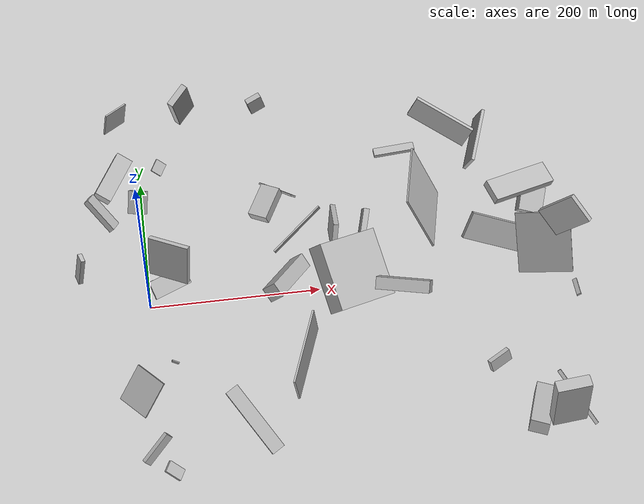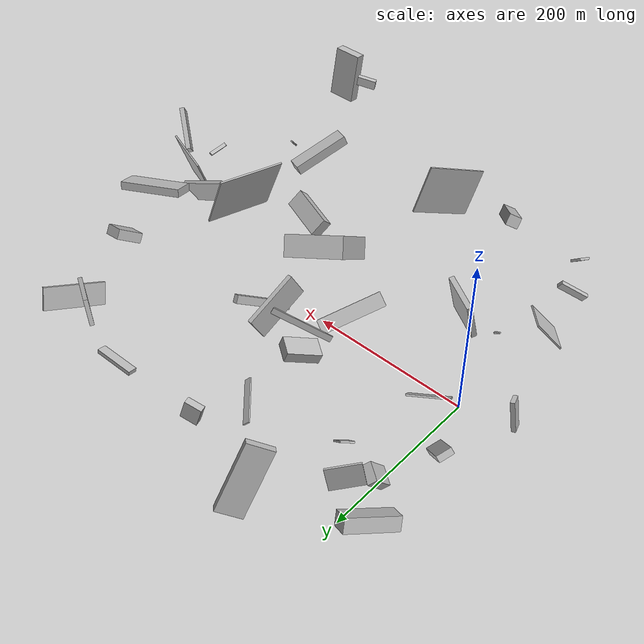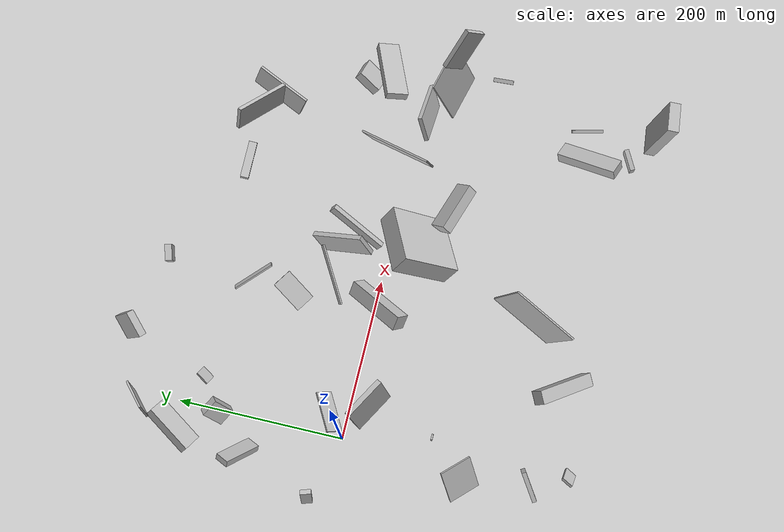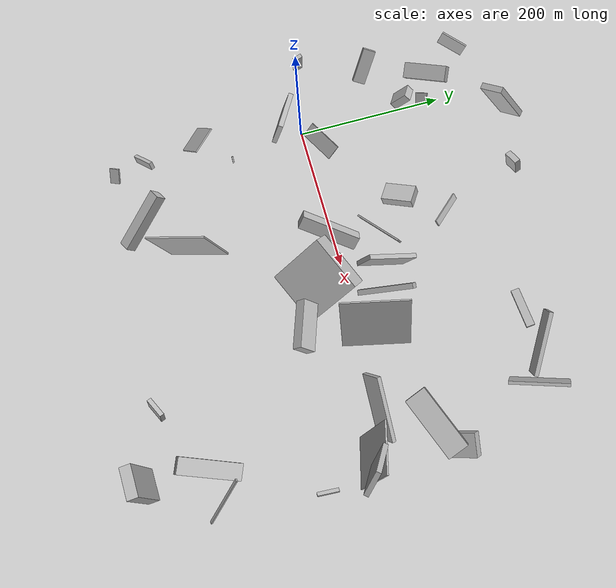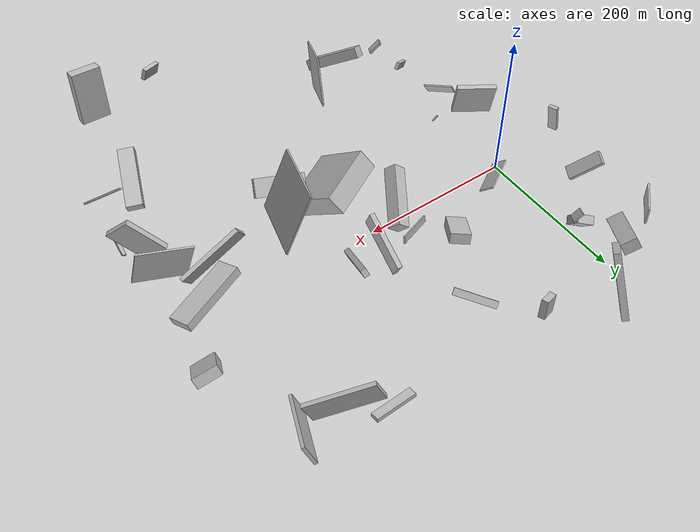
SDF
<sdf version="1.6">
 <world name="default">
  <scene>
   <sky><clouds><speed>12</speed></clouds></sky>
   <ambient>0.4 0.4 0.4 1</ambient>
   <background>0.7 0.7 0.7 1</background>
   <shadows>1</shadows>
  </scene>
  <gravity>0 0 -9.8066</gravity>
  <magnetic_field>6e-06 2.3e-05 -4.2e-05</magnetic_field>
  <physics default="0" name="default_physics" type="ode">
   <ode>
    <solver>
     <type>quick</type>
     <iters>10</iters>
     <sor>1.0</sor>
     <use_dynamic_moi_rescaling>0</use_dynamic_moi_rescaling>
    </solver>
    <constraints>
     <cfm>0</cfm>
     <erp>0.2</erp>
     <contact_max_correcting_vel>100</contact_max_correcting_vel>
     <contact_surface_layer>0.001</contact_surface_layer>
    </constraints>
   </ode>
   <max_step_size>0.004</max_step_size>
   <real_time_factor>1</real_time_factor>
   <real_time_update_rate>250</real_time_update_rate>
  </physics>
  <light name="sun" type="directional">
   <pose>0 0 10 0 0 0</pose>
   <diffuse>0.8 0.8 0.8 1</diffuse>
   <specular>0.2 0.2 0.2 1</specular>
   <attenuation>
    <range>1000</range>
    <constant>0.9</constant>
    <linear>0.01</linear>
    <quadratic>0.001</quadratic>
   </attenuation>
   <direction>-0.5 0.1 -0.9</direction>
  </light>
  <model name="building_1">
   <static>0</static>
   <pose>120.69952618193095 -259.11336223188584 58.884110034093844 1.0397348485780282 0.30126817021788665 -2.6742877106502343</pose>
   <link name="link">
    <gravity>0</gravity>
    <pose>0 0 40.0 0 0 0</pose>
    <collision name="collision"><geometry><box><size>15 14 80</size></box></geometry></collision>
    <visual name="visual">
     <cast_shadows>0</cast_shadows>
     <geometry><box><size>15 14 80</size></box></geometry>
     <material>
      <script>
       <uri>model://HANNAS_wall/materials/scripts</uri>
       <uri>model://HANNAS_wall/materials/textures</uri>
       <name>vrc/HANNAS_wall</name>
      </script>
     </material>
    </visual>
   </link>
  </model>
  <model name="building_2">
   <static>0</static>
   <pose>181.50811362495278 58.371357169876724 43.96327501220716 0.27452021353816236 -0.4481573492108263 0.5406475617595026</pose>
   <link name="link">
    <gravity>0</gravity>
    <pose>0 0 4.0 0 0 0</pose>
    <collision name="collision"><geometry><box><size>75 2 8</size></box></geometry></collision>
    <visual name="visual">
     <cast_shadows>0</cast_shadows>
     <geometry><box><size>75 2 8</size></box></geometry>
     <material>
      <script>
       <uri>model://HANNAS_wall/materials/scripts</uri>
       <uri>model://HANNAS_wall/materials/textures</uri>
       <name>vrc/HANNAS_wall</name>
      </script>
     </material>
    </visual>
   </link>
  </model>
  <model name="building_3">
   <static>0</static>
   <pose>256.7662573425646 41.91435346656143 30.976876899927195 -2.760050743788633 -0.5536722586722133 1.2575591969981854</pose>
   <link name="link">
    <gravity>0</gravity>
    <pose>0 0 5.0 0 0 0</pose>
    <collision name="collision"><geometry><box><size>80 7 10</size></box></geometry></collision>
    <visual name="visual">
     <cast_shadows>0</cast_shadows>
     <geometry><box><size>80 7 10</size></box></geometry>
     <material>
      <script>
       <uri>model://HANNAS_wall/materials/scripts</uri>
       <uri>model://HANNAS_wall/materials/textures</uri>
       <name>vrc/HANNAS_wall</name>
      </script>
     </material>
    </visual>
   </link>
  </model>
  <model name="building_4">
   <static>0</static>
   <pose>456.20914614981785 -217.9416135344359 33.34411260009686 -2.2790426128209154 -0.6465439906257192 2.2514999040885435</pose>
   <link name="link">
    <gravity>0</gravity>
    <pose>0 0 2.0 0 0 0</pose>
    <collision name="collision"><geometry><box><size>73 2 4</size></box></geometry></collision>
    <visual name="visual">
     <cast_shadows>0</cast_shadows>
     <geometry><box><size>73 2 4</size></box></geometry>
     <material>
      <script>
       <uri>model://HANNAS_wall/materials/scripts</uri>
       <uri>model://HANNAS_wall/materials/textures</uri>
       <name>vrc/HANNAS_wall</name>
      </script>
     </material>
    </visual>
   </link>
  </model>
  <model name="building_5">
   <static>0</static>
   <pose>22.758688437050413 -100.9555804152837 23.829792965315036 -1.4291897949516983 -0.5974958535114864 3.0999967223619564</pose>
   <link name="link">
    <gravity>0</gravity>
    <pose>0 0 1.0 0 0 0</pose>
    <collision name="collision"><geometry><box><size>9 2 2</size></box></geometry></collision>
    <visual name="visual">
     <cast_shadows>0</cast_shadows>
     <geometry><box><size>9 2 2</size></box></geometry>
     <material>
      <script>
       <uri>model://HANNAS_wall/materials/scripts</uri>
       <uri>model://HANNAS_wall/materials/textures</uri>
       <name>vrc/HANNAS_wall</name>
      </script>
     </material>
    </visual>
   </link>
  </model>
  <model name="building_6">
   <static>0</static>
   <pose>457.5881202510455 -30.694109586867413 112.60294726535028 -0.13005200243832013 0.7182337948133881 -0.7873210385704256</pose>
   <link name="link">
    <gravity>0</gravity>
    <pose>0 0 26.0 0 0 0</pose>
    <collision name="collision"><geometry><box><size>35 6 52</size></box></geometry></collision>
    <visual name="visual">
     <cast_shadows>0</cast_shadows>
     <geometry><box><size>35 6 52</size></box></geometry>
     <material>
      <script>
       <uri>model://HANNAS_wall/materials/scripts</uri>
       <uri>model://HANNAS_wall/materials/textures</uri>
       <name>vrc/HANNAS_wall</name>
      </script>
     </material>
    </visual>
   </link>
  </model>
  <model name="building_7">
   <static>0</static>
   <pose>264.5080680622365 -24.33482753790708 66.23999943655849 1.2452911231877524 -0.8850387906040724 -0.8895127808003587</pose>
   <link name="link">
    <gravity>0</gravity>
    <pose>0 0 36.5 0 0 0</pose>
    <collision name="collision"><geometry><box><size>27 78 73</size></box></geometry></collision>
    <visual name="visual">
     <cast_shadows>0</cast_shadows>
     <geometry><box><size>27 78 73</size></box></geometry>
     <material>
      <script>
       <uri>model://HANNAS_wall/materials/scripts</uri>
       <uri>model://HANNAS_wall/materials/textures</uri>
       <name>vrc/HANNAS_wall</name>
      </script>
     </material>
    </visual>
   </link>
  </model>
  <model name="building_8">
   <static>0</static>
   <pose>397.88085388163427 -19.696641739692776 71.45455297797409 -0.48992130991418587 -0.3541414682927942 -1.40132611519131</pose>
   <link name="link">
    <gravity>0</gravity>
    <pose>0 0 16.0 0 0 0</pose>
    <collision name="collision"><geometry><box><size>5 80 32</size></box></geometry></collision>
    <visual name="visual">
     <cast_shadows>0</cast_shadows>
     <geometry><box><size>5 80 32</size></box></geometry>
     <material>
      <script>
       <uri>model://HANNAS_wall/materials/scripts</uri>
       <uri>model://HANNAS_wall/materials/textures</uri>
       <name>vrc/HANNAS_wall</name>
      </script>
     </material>
    </visual>
   </link>
  </model>
  <model name="building_9">
   <static>0</static>
   <pose>143.61620776612097 239.90057532806293 79.79815473929472 -1.2842421133081254 0.09240941797095527 -1.2390919156993048</pose>
   <link name="link">
    <gravity>0</gravity>
    <pose>0 0 9.5 0 0 0</pose>
    <collision name="collision"><geometry><box><size>8 22 19</size></box></geometry></collision>
    <visual name="visual">
     <cast_shadows>0</cast_shadows>
     <geometry><box><size>8 22 19</size></box></geometry>
     <material>
      <script>
       <uri>model://HANNAS_wall/materials/scripts</uri>
       <uri>model://HANNAS_wall/materials/textures</uri>
       <name>vrc/HANNAS_wall</name>
      </script>
     </material>
    </visual>
   </link>
  </model>
  <model name="building_10">
   <static>0</static>
   <pose>314.8454382366226 -79.82396833200644 79.97664831847443 -1.703617545550378 -0.7818103444382961 1.3323851776856472</pose>
   <link name="link">
    <gravity>0</gravity>
    <pose>0 0 30.5 0 0 0</pose>
    <collision name="collision"><geometry><box><size>14 23 61</size></box></geometry></collision>
    <visual name="visual">
     <cast_shadows>0</cast_shadows>
     <geometry><box><size>14 23 61</size></box></geometry>
     <material>
      <script>
       <uri>model://HANNAS_wall/materials/scripts</uri>
       <uri>model://HANNAS_wall/materials/textures</uri>
       <name>vrc/HANNAS_wall</name>
      </script>
     </material>
    </visual>
   </link>
  </model>
  <model name="building_11">
   <static>0</static>
   <pose>26.179542586316494 161.15237304823688 68.65016905705002 2.656185173952164 -0.6894006298687207 2.917071122340261</pose>
   <link name="link">
    <gravity>0</gravity>
    <pose>0 0 1.0 0 0 0</pose>
    <collision name="collision"><geometry><box><size>14 16 2</size></box></geometry></collision>
    <visual name="visual">
     <cast_shadows>0</cast_shadows>
     <geometry><box><size>14 16 2</size></box></geometry>
     <material>
      <script>
       <uri>model://HANNAS_wall/materials/scripts</uri>
       <uri>model://HANNAS_wall/materials/textures</uri>
       <name>vrc/HANNAS_wall</name>
      </script>
     </material>
    </visual>
   </link>
  </model>
  <model name="building_12">
   <static>0</static>
   <pose>-12.681445525121527 152.430430504961 23.81527549517508 1.1246517643629543 -0.866549639763411 1.377205303680028</pose>
   <link name="link">
    <gravity>0</gravity>
    <pose>0 0 10.5 0 0 0</pose>
    <collision name="collision"><geometry><box><size>28 11 21</size></box></geometry></collision>
    <visual name="visual">
     <cast_shadows>0</cast_shadows>
     <geometry><box><size>28 11 21</size></box></geometry>
     <material>
      <script>
       <uri>model://HANNAS_wall/materials/scripts</uri>
       <uri>model://HANNAS_wall/materials/textures</uri>
       <name>vrc/HANNAS_wall</name>
      </script>
     </material>
    </visual>
   </link>
  </model>
  <model name="building_13">
   <static>0</static>
   <pose>-40.67313104647736 195.5058865699871 31.42600976609775 2.0841163433121315 -0.2939150811981663 0.9943234118477815</pose>
   <link name="link">
    <gravity>0</gravity>
    <pose>0 0 10.5 0 0 0</pose>
    <collision name="collision"><geometry><box><size>60 16 21</size></box></geometry></collision>
    <visual name="visual">
     <cast_shadows>0</cast_shadows>
     <geometry><box><size>60 16 21</size></box></geometry>
     <material>
      <script>
       <uri>model://HANNAS_wall/materials/scripts</uri>
       <uri>model://HANNAS_wall/materials/textures</uri>
       <name>vrc/HANNAS_wall</name>
      </script>
     </material>
    </visual>
   </link>
  </model>
  <model name="building_14">
   <static>0</static>
   <pose>402.91675704806096 -222.57442956193123 32.42599326893376 1.7541957304787927 -1.1893142103745313 1.0121656582063487</pose>
   <link name="link">
    <gravity>0</gravity>
    <pose>0 0 10.5 0 0 0</pose>
    <collision name="collision"><geometry><box><size>14 80 21</size></box></geometry></collision>
    <visual name="visual">
     <cast_shadows>0</cast_shadows>
     <geometry><box><size>14 80 21</size></box></geometry>
     <material>
      <script>
       <uri>model://HANNAS_wall/materials/scripts</uri>
       <uri>model://HANNAS_wall/materials/textures</uri>
       <name>vrc/HANNAS_wall</name>
      </script>
     </material>
    </visual>
   </link>
  </model>
  <model name="building_15">
   <static>0</static>
   <pose>350.618983944651 -252.2673320598031 159.88041423782056 1.8034985931349783 0.1881391269607854 -2.6709539954519568</pose>
   <link name="link">
    <gravity>0</gravity>
    <pose>0 0 2.5 0 0 0</pose>
    <collision name="collision"><geometry><box><size>24 14 5</size></box></geometry></collision>
    <visual name="visual">
     <cast_shadows>0</cast_shadows>
     <geometry><box><size>24 14 5</size></box></geometry>
     <material>
      <script>
       <uri>model://HANNAS_wall/materials/scripts</uri>
       <uri>model://HANNAS_wall/materials/textures</uri>
       <name>vrc/HANNAS_wall</name>
      </script>
     </material>
    </visual>
   </link>
  </model>
  <model name="building_16">
   <static>0</static>
   <pose>403.7447832671083 27.799339332758876 107.831299197434 1.927876952031465 1.2621201451408268 2.284133710981371</pose>
   <link name="link">
    <gravity>0</gravity>
    <pose>0 0 40.0 0 0 0</pose>
    <collision name="collision"><geometry><box><size>10 27 80</size></box></geometry></collision>
    <visual name="visual">
     <cast_shadows>0</cast_shadows>
     <geometry><box><size>10 27 80</size></box></geometry>
     <material>
      <script>
       <uri>model://HANNAS_wall/materials/scripts</uri>
       <uri>model://HANNAS_wall/materials/textures</uri>
       <name>vrc/HANNAS_wall</name>
      </script>
     </material>
    </visual>
   </link>
  </model>
  <model name="building_17">
   <static>0</static>
   <pose>426.7085365364007 186.2139611812019 45.4974789589673 2.7541356187252606 0.2659669960185522 -1.9366226544577425</pose>
   <link name="link">
    <gravity>0</gravity>
    <pose>0 0 14.0 0 0 0</pose>
    <collision name="collision"><geometry><box><size>74 4 28</size></box></geometry></collision>
    <visual name="visual">
     <cast_shadows>0</cast_shadows>
     <geometry><box><size>74 4 28</size></box></geometry>
     <material>
      <script>
       <uri>model://HANNAS_wall/materials/scripts</uri>
       <uri>model://HANNAS_wall/materials/textures</uri>
       <name>vrc/HANNAS_wall</name>
      </script>
     </material>
    </visual>
   </link>
  </model>
  <model name="building_18">
   <static>0</static>
   <pose>-43.87603085545305 102.96108474567328 62.54043972291579 2.3700228037045923 -0.32670637688924875 -1.97114442460201</pose>
   <link name="link">
    <gravity>0</gravity>
    <pose>0 0 3.5 0 0 0</pose>
    <collision name="collision"><geometry><box><size>17 46 7</size></box></geometry></collision>
    <visual name="visual">
     <cast_shadows>0</cast_shadows>
     <geometry><box><size>17 46 7</size></box></geometry>
     <material>
      <script>
       <uri>model://HANNAS_wall/materials/scripts</uri>
       <uri>model://HANNAS_wall/materials/textures</uri>
       <name>vrc/HANNAS_wall</name>
      </script>
     </material>
    </visual>
   </link>
  </model>
  <model name="building_19">
   <static>0</static>
   <pose>24.93752803135609 22.352686225266062 15.976485257411714 -0.1299588804493501 0.7390869284259441 -1.131806533561194</pose>
   <link name="link">
    <gravity>0</gravity>
    <pose>0 0 1.0 0 0 0</pose>
    <collision name="collision"><geometry><box><size>22 49 2</size></box></geometry></collision>
    <visual name="visual">
     <cast_shadows>0</cast_shadows>
     <geometry><box><size>22 49 2</size></box></geometry>
     <material>
      <script>
       <uri>model://HANNAS_wall/materials/scripts</uri>
       <uri>model://HANNAS_wall/materials/textures</uri>
       <name>vrc/HANNAS_wall</name>
      </script>
     </material>
    </visual>
   </link>
  </model>
  <model name="building_20">
   <static>0</static>
   <pose>168.52280447685746 157.52921038029976 13.851177505481463 2.347618982466965 -0.2398814514328894 -0.8263164588284826</pose>
   <link name="link">
    <gravity>0</gravity>
    <pose>0 0 1.0 0 0 0</pose>
    <collision name="collision"><geometry><box><size>54 9 2</size></box></geometry></collision>
    <visual name="visual">
     <cast_shadows>0</cast_shadows>
     <geometry><box><size>54 9 2</size></box></geometry>
     <material>
      <script>
       <uri>model://HANNAS_wall/materials/scripts</uri>
       <uri>model://HANNAS_wall/materials/textures</uri>
       <name>vrc/HANNAS_wall</name>
      </script>
     </material>
    </visual>
   </link>
  </model>
  <model name="building_21">
   <static>0</static>
   <pose>375.1140188367666 204.21202833197532 44.57386108529796 -0.04904043321041027 0.3765574698847892 -0.5026831260255888</pose>
   <link name="link">
    <gravity>0</gravity>
    <pose>0 0 15.5 0 0 0</pose>
    <collision name="collision"><geometry><box><size>80 5 31</size></box></geometry></collision>
    <visual name="visual">
     <cast_shadows>0</cast_shadows>
     <geometry><box><size>80 5 31</size></box></geometry>
     <material>
      <script>
       <uri>model://HANNAS_wall/materials/scripts</uri>
       <uri>model://HANNAS_wall/materials/textures</uri>
       <name>vrc/HANNAS_wall</name>
      </script>
     </material>
    </visual>
   </link>
  </model>
  <model name="building_22">
   <static>0</static>
   <pose>225.98333803728337 84.9334018065399 31.300966082780942 1.0930738843675576 0.09837390245017022 -0.12689327895762134</pose>
   <link name="link">
    <gravity>0</gravity>
    <pose>0 0 35.0 0 0 0</pose>
    <collision name="collision"><geometry><box><size>6 33 70</size></box></geometry></collision>
    <visual name="visual">
     <cast_shadows>0</cast_shadows>
     <geometry><box><size>6 33 70</size></box></geometry>
     <material>
      <script>
       <uri>model://HANNAS_wall/materials/scripts</uri>
       <uri>model://HANNAS_wall/materials/textures</uri>
       <name>vrc/HANNAS_wall</name>
      </script>
     </material>
    </visual>
   </link>
  </model>
  <model name="building_23">
   <static>0</static>
   <pose>468.5529069503606 81.58959405188394 29.270958615334642 0.35001072569242553 -0.556909459123053 1.2267000620719966</pose>
   <link name="link">
    <gravity>0</gravity>
    <pose>0 0 6.5 0 0 0</pose>
    <collision name="collision"><geometry><box><size>33 30 13</size></box></geometry></collision>
    <visual name="visual">
     <cast_shadows>0</cast_shadows>
     <geometry><box><size>33 30 13</size></box></geometry>
     <material>
      <script>
       <uri>model://HANNAS_wall/materials/scripts</uri>
       <uri>model://HANNAS_wall/materials/textures</uri>
       <name>vrc/HANNAS_wall</name>
      </script>
     </material>
    </visual>
   </link>
  </model>
  <model name="building_24">
   <static>0</static>
   <pose>317.4406282276275 5.9854212025201825 135.03938091050628 -0.12262248180929614 -1.156162972914464 3.014855457944738</pose>
   <link name="link">
    <gravity>0</gravity>
    <pose>0 0 1.0 0 0 0</pose>
    <collision name="collision"><geometry><box><size>80 80 2</size></box></geometry></collision>
    <visual name="visual">
     <cast_shadows>0</cast_shadows>
     <geometry><box><size>80 80 2</size></box></geometry>
     <material>
      <script>
       <uri>model://HANNAS_wall/materials/scripts</uri>
       <uri>model://HANNAS_wall/materials/textures</uri>
       <name>vrc/HANNAS_wall</name>
      </script>
     </material>
    </visual>
   </link>
  </model>
  <model name="building_25">
   <static>0</static>
   <pose>-18.232428048422207 215.17895016181873 119.32508305778279 -2.9685012515421283 -0.07837370194785444 2.3629135254403266</pose>
   <link name="link">
    <gravity>0</gravity>
    <pose>0 0 14.0 0 0 0</pose>
    <collision name="collision"><geometry><box><size>2 35 28</size></box></geometry></collision>
    <visual name="visual">
     <cast_shadows>0</cast_shadows>
     <geometry><box><size>2 35 28</size></box></geometry>
     <material>
      <script>
       <uri>model://HANNAS_wall/materials/scripts</uri>
       <uri>model://HANNAS_wall/materials/textures</uri>
       <name>vrc/HANNAS_wall</name>
      </script>
     </material>
    </visual>
   </link>
  </model>
  <model name="building_26">
   <static>0</static>
   <pose>457.23711456347775 -49.79012776540975 47.9444642563589 -0.18634379469243073 0.3378682019468089 1.2385515986061577</pose>
   <link name="link">
    <gravity>0</gravity>
    <pose>0 0 38.5 0 0 0</pose>
    <collision name="collision"><geometry><box><size>2 62 77</size></box></geometry></collision>
    <visual name="visual">
     <cast_shadows>0</cast_shadows>
     <geometry><box><size>2 62 77</size></box></geometry>
     <material>
      <script>
       <uri>model://HANNAS_wall/materials/scripts</uri>
       <uri>model://HANNAS_wall/materials/textures</uri>
       <name>vrc/HANNAS_wall</name>
      </script>
     </material>
    </visual>
   </link>
  </model>
  <model name="building_27">
   <static>0</static>
   <pose>140.6656207371704 -37.378774300061735 47.885237739455945 -2.0282563839530265 0.7365373277560006 -0.8743602358921342</pose>
   <link name="link">
    <gravity>0</gravity>
    <pose>0 0 40.0 0 0 0</pose>
    <collision name="collision"><geometry><box><size>18 18 80</size></box></geometry></collision>
    <visual name="visual">
     <cast_shadows>0</cast_shadows>
     <geometry><box><size>18 18 80</size></box></geometry>
     <material>
      <script>
       <uri>model://HANNAS_wall/materials/scripts</uri>
       <uri>model://HANNAS_wall/materials/textures</uri>
       <name>vrc/HANNAS_wall</name>
      </script>
     </material>
    </visual>
   </link>
  </model>
  <model name="building_28">
   <static>0</static>
   <pose>26.02448529568691 -33.30922008729985 90.2702541566811 -0.23850817270589703 -0.04879428196128045 -0.5317412600095619</pose>
   <link name="link">
    <gravity>0</gravity>
    <pose>0 0 23.5 0 0 0</pose>
    <collision name="collision"><geometry><box><size>48 6 47</size></box></geometry></collision>
    <visual name="visual">
     <cast_shadows>0</cast_shadows>
     <geometry><box><size>48 6 47</size></box></geometry>
     <material>
      <script>
       <uri>model://HANNAS_wall/materials/scripts</uri>
       <uri>model://HANNAS_wall/materials/textures</uri>
       <name>vrc/HANNAS_wall</name>
      </script>
     </material>
    </visual>
   </link>
  </model>
  <model name="building_29">
   <static>0</static>
   <pose>149.18420759706984 95.29933237556548 52.38595412847401 0.35023694824443 -0.1108269205166674 -0.5911404104902194</pose>
   <link name="link">
    <gravity>0</gravity>
    <pose>0 0 6.5 0 0 0</pose>
    <collision name="collision"><geometry><box><size>24 41 13</size></box></geometry></collision>
    <visual name="visual">
     <cast_shadows>0</cast_shadows>
     <geometry><box><size>24 41 13</size></box></geometry>
     <material>
      <script>
       <uri>model://HANNAS_wall/materials/scripts</uri>
       <uri>model://HANNAS_wall/materials/textures</uri>
       <name>vrc/HANNAS_wall</name>
      </script>
     </material>
    </visual>
   </link>
  </model>
  <model name="building_30">
   <static>0</static>
   <pose>-2.3368763787799622 -217.84595854204372 23.319261091759678 0.5434223955706162 -0.20081285763224974 -1.047160231597914</pose>
   <link name="link">
    <gravity>0</gravity>
    <pose>0 0 5.0 0 0 0</pose>
    <collision name="collision"><geometry><box><size>5 38 10</size></box></geometry></collision>
    <visual name="visual">
     <cast_shadows>0</cast_shadows>
     <geometry><box><size>5 38 10</size></box></geometry>
     <material>
      <script>
       <uri>model://HANNAS_wall/materials/scripts</uri>
       <uri>model://HANNAS_wall/materials/textures</uri>
       <name>vrc/HANNAS_wall</name>
      </script>
     </material>
    </visual>
   </link>
  </model>
  <model name="building_31">
   <static>0</static>
   <pose>10.778629503377879 -257.60277763508105 40.91088510796965 0.7548568591133664 -0.16632217657213352 1.094199452845102</pose>
   <link name="link">
    <gravity>0</gravity>
    <pose>0 0 1.5 0 0 0</pose>
    <collision name="collision"><geometry><box><size>13 20 3</size></box></geometry></collision>
    <visual name="visual">
     <cast_shadows>0</cast_shadows>
     <geometry><box><size>13 20 3</size></box></geometry>
     <material>
      <script>
       <uri>model://HANNAS_wall/materials/scripts</uri>
       <uri>model://HANNAS_wall/materials/textures</uri>
       <name>vrc/HANNAS_wall</name>
      </script>
     </material>
    </visual>
   </link>
  </model>
  <model name="building_32">
   <static>0</static>
   <pose>419.3608097606359 -285.19193167615856 95.8008313114337 -0.10820674570354318 0.0679401227263162 -3.0884942381118385</pose>
   <link name="link">
    <gravity>0</gravity>
    <pose>0 0 34.0 0 0 0</pose>
    <collision name="collision"><geometry><box><size>36 13 68</size></box></geometry></collision>
    <visual name="visual">
     <cast_shadows>0</cast_shadows>
     <geometry><box><size>36 13 68</size></box></geometry>
     <material>
      <script>
       <uri>model://HANNAS_wall/materials/scripts</uri>
       <uri>model://HANNAS_wall/materials/textures</uri>
       <name>vrc/HANNAS_wall</name>
      </script>
     </material>
    </visual>
   </link>
  </model>
  <model name="building_33">
   <static>0</static>
   <pose>164.0870865028565 -171.21639968517033 84.78044999081004 -0.3535729201247812 -0.02023121344326899 2.7519872617811054</pose>
   <link name="link">
    <gravity>0</gravity>
    <pose>0 0 30.5 0 0 0</pose>
    <collision name="collision"><geometry><box><size>2 80 61</size></box></geometry></collision>
    <visual name="visual">
     <cast_shadows>0</cast_shadows>
     <geometry><box><size>2 80 61</size></box></geometry>
     <material>
      <script>
       <uri>model://HANNAS_wall/materials/scripts</uri>
       <uri>model://HANNAS_wall/materials/textures</uri>
       <name>vrc/HANNAS_wall</name>
      </script>
     </material>
    </visual>
   </link>
  </model>
  <model name="building_34">
   <static>0</static>
   <pose>58.17402185511173 263.92398080999396 75.82279554657767 1.8761846136945175 -0.4370358807853993 0.7403419130613971</pose>
   <link name="link">
    <gravity>0</gravity>
    <pose>0 0 4.0 0 0 0</pose>
    <collision name="collision"><geometry><box><size>30 80 8</size></box></geometry></collision>
    <visual name="visual">
     <cast_shadows>0</cast_shadows>
     <geometry><box><size>30 80 8</size></box></geometry>
     <material>
      <script>
       <uri>model://HANNAS_wall/materials/scripts</uri>
       <uri>model://HANNAS_wall/materials/textures</uri>
       <name>vrc/HANNAS_wall</name>
      </script>
     </material>
    </visual>
   </link>
  </model>
  <model name="building_35">
   <static>0</static>
   <pose>-3.3897977967417354 -155.65566267808097 28.158524257584894 1.444880696748363 -0.7249038932722591 -2.3063805819295737</pose>
   <link name="link">
    <gravity>0</gravity>
    <pose>0 0 19.0 0 0 0</pose>
    <collision name="collision"><geometry><box><size>2 45 38</size></box></geometry></collision>
    <visual name="visual">
     <cast_shadows>0</cast_shadows>
     <geometry><box><size>2 45 38</size></box></geometry>
     <material>
      <script>
       <uri>model://HANNAS_wall/materials/scripts</uri>
       <uri>model://HANNAS_wall/materials/textures</uri>
       <name>vrc/HANNAS_wall</name>
      </script>
     </material>
    </visual>
   </link>
  </model>
  <model name="building_36">
   <static>0</static>
   <pose>324.6496552555461 205.65805116916619 7.185862185086711 1.3935545843336345 0.047741097425087815 -3.091493176266456</pose>
   <link name="link">
    <gravity>0</gravity>
    <pose>0 0 5.5 0 0 0</pose>
    <collision name="collision"><geometry><box><size>52 5 11</size></box></geometry></collision>
    <visual name="visual">
     <cast_shadows>0</cast_shadows>
     <geometry><box><size>52 5 11</size></box></geometry>
     <material>
      <script>
       <uri>model://HANNAS_wall/materials/scripts</uri>
       <uri>model://HANNAS_wall/materials/textures</uri>
       <name>vrc/HANNAS_wall</name>
      </script>
     </material>
    </visual>
   </link>
  </model>
  <model name="building_37">
   <static>0</static>
   <pose>478.5156976775273 -96.29768191711408 72.40595321228676 2.6236856476642063 0.1512402528000561 1.5045566895716502</pose>
   <link name="link">
    <gravity>0</gravity>
    <pose>0 0 1.0 0 0 0</pose>
    <collision name="collision"><geometry><box><size>26 5 2</size></box></geometry></collision>
    <visual name="visual">
     <cast_shadows>0</cast_shadows>
     <geometry><box><size>26 5 2</size></box></geometry>
     <material>
      <script>
       <uri>model://HANNAS_wall/materials/scripts</uri>
       <uri>model://HANNAS_wall/materials/textures</uri>
       <name>vrc/HANNAS_wall</name>
      </script>
     </material>
    </visual>
   </link>
  </model>
  <model name="building_38">
   <static>0</static>
   <pose>-77.97292559951201 17.364695098545827 43.12520138653397 0.06249810231416895 0.17044053925859848 0.3207628930240626</pose>
   <link name="link">
    <gravity>0</gravity>
    <pose>0 0 19.5 0 0 0</pose>
    <collision name="collision"><geometry><box><size>5 12 39</size></box></geometry></collision>
    <visual name="visual">
     <cast_shadows>0</cast_shadows>
     <geometry><box><size>5 12 39</size></box></geometry>
     <material>
      <script>
       <uri>model://HANNAS_wall/materials/scripts</uri>
       <uri>model://HANNAS_wall/materials/textures</uri>
       <name>vrc/HANNAS_wall</name>
      </script>
     </material>
    </visual>
   </link>
  </model>
 </world>
</sdf>
